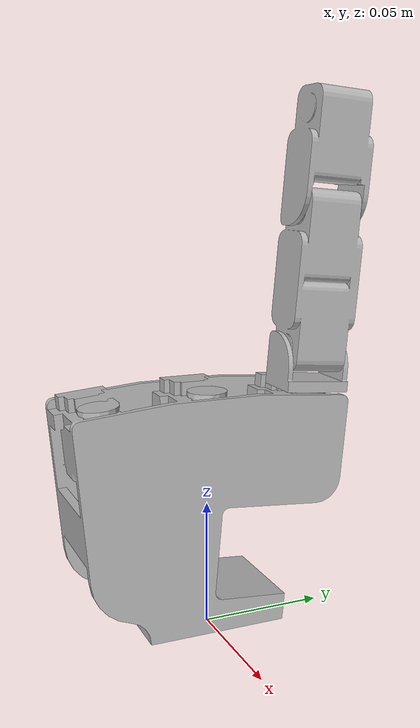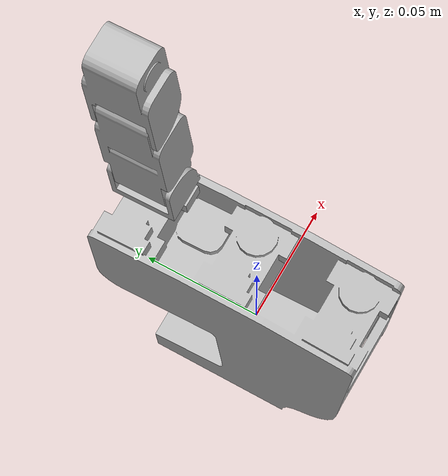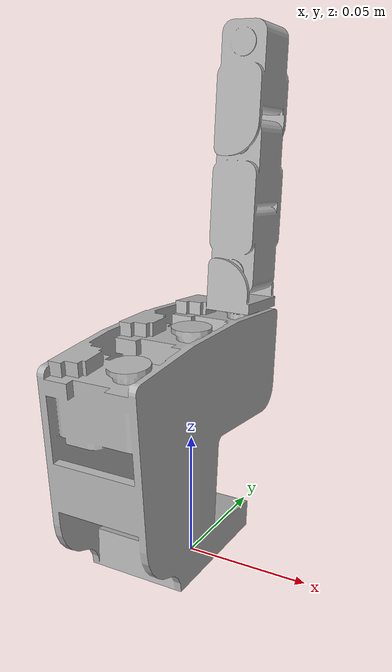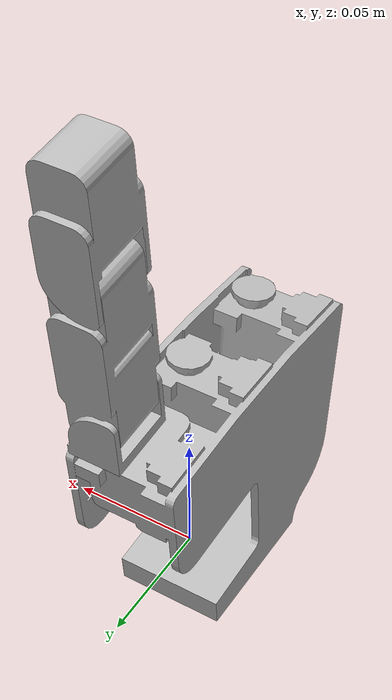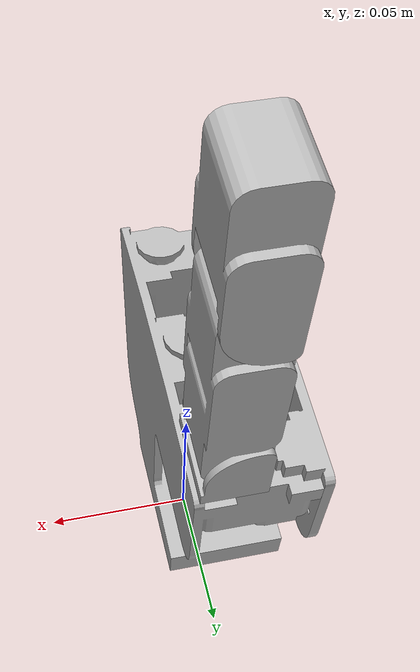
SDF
<?xml version='1.0'?>
<sdf version='1.6'>
  <model name='allegro_finger_1'>
    <joint name='weld_base' type='fixed'>
      <parent>world</parent>
      <child>hand_root</child>
      <pose>0 0 0 0 0 0</pose>
    </joint>

    <link name='hand_root'>
      <pose frame=''>0 0 0 0 -0 0</pose>
      <inertial>
        <pose frame=''>0 0 0.1425 0 -0 0</pose>
        <mass>0.4154</mass>
        <inertia>
          <ixx>0.0001</ixx>
          <ixy>0</ixy>
          <ixz>0</ixz>
          <iyy>0.0001</iyy>
          <iyz>0</iyz>
          <izz>0.0001</izz>
        </inertia>
      </inertial>
      <collision name='hand_root_fixed_joint_lump__palm_link_collision'>
        <pose frame=''>-0.0093 0 0.0475 0 -0 0</pose>
        <geometry>
          <box>
            <size>0.0408 0.113 0.095</size>
          </box>
        </geometry>
      </collision>
      <visual name='hand_root_fixed_joint_lump__palm_link_visual'>
        <pose frame=''>0 0 0.095 0 -0 0</pose>
        <geometry>
          <mesh>
            <scale>1 1 1</scale>
            <uri>../meshes/base_link.obj</uri>
          </mesh>
        </geometry>
      </visual>
    </link>
    <link name='link_0'>
      <pose frame=''>0 0.0435 0.093458 -0.087267 0 0</pose>
      <inertial>
        <pose frame=''>0 0 0 0 -0 0</pose>
        <mass>0.0119</mass>
        <inertia>
          <ixx>1.01667e-06</ixx>
          <ixy>0</ixy>
          <ixz>0</ixz>
          <iyy>6.47677e-07</iyy>
          <iyz>0</iyz>
          <izz>1.01667e-06</izz>
        </inertia>
      </inertial>
      <visual name='link_0_visual'>
        <pose frame=''>0 0 0 0 -0 0</pose>
        <geometry>
          <mesh>
            <scale>1 1 1</scale>
            <uri>../meshes/link_0.0.obj</uri>
          </mesh>
        </geometry>
      </visual>
    </link>
    <joint name='joint_0' type='revolute'>
      <child>link_0</child>
      <parent>hand_root</parent>
      <axis>
        <xyz>0 0.087156 0.996195</xyz>
        <limit>
          <lower>-0.47</lower>
          <upper>0.47</upper>
          <effort>15</effort>
          <velocity>7</velocity>
        </limit>
        <dynamics>
          <damping>3</damping>
          <friction>10</friction>
          <spring_reference>0</spring_reference>
          <spring_stiffness>0</spring_stiffness>
        </dynamics>
        <use_parent_model_frame>1</use_parent_model_frame>
      </axis>
    </joint>
    <link name='link_1'>
      <pose frame=''>0 0.044929 0.109796 -0.087267 0 0</pose>
      <inertial>
        <pose frame=''>0 0 0 0 -0 0</pose>
        <mass>0.065</mass>
        <inertia>
          <ixx>7.95654e-05</ixx>
          <ixy>1.7199e-050</ixy>
          <ixz>8.75875e-060</ixz>
          <iyy>2.47089e-05</iyy>
          <iyz>2.41313e-050</iyz>
          <izz>7.95654e-05</izz>
        </inertia>
      </inertial>
      <collision name='link_1_collision'>
        <pose frame=''>0 0 0.027 0 -0 0</pose>
        <geometry>
          <box>
            <size>0.0196 0.0275 0.054</size>
          </box>
        </geometry>
      </collision>

      <visual name='link_1_visual'>
        <pose frame=''>0 0 0 0 -0 0</pose>
        <geometry>
          <mesh>
            <scale>1 1 1</scale>
            <uri>../meshes/link_1.0.obj</uri>
          </mesh>
        </geometry>
      </visual>
    </link>
    <joint name='joint_1' type='revolute'>
      <child>link_1</child>
      <parent>link_0</parent>
      <axis>
        <xyz>0 0.996195 -0.087156</xyz>
        <limit>
          <lower>-0.196</lower>
          <upper>1.61</upper>
          <effort>15</effort>
          <velocity>7</velocity>
        </limit>
        <dynamics>
          <damping>3</damping>
          <friction>5</friction>
          <spring_reference>0</spring_reference>
          <spring_stiffness>0</spring_stiffness>
        </dynamics>
        <use_parent_model_frame>1</use_parent_model_frame>
      </axis>
    </joint>
    <link name='link_2'>
      <pose frame=''>0 0.049636 0.16359 -0.087267 0 0</pose>
      <inertial>
        <pose frame=''>0 0 0 0 -0 0</pose>
        <mass>0.0355</mass>
        <inertia>
          <ixx>2.63979e-05</ixx>
          <ixy>6.67968e-060</ixy>
          <ixz>4.78363e-060</ixz>
          <iyy>1.34949e-05</iyy>
          <iyz>9.372e-06.</iyz>
          <izz>2.63979e-05</izz>
        </inertia>
      </inertial>
      <collision name='link_2_collision'>
        <pose frame=''>0 0 0.0192 0 -0 0</pose>
        <geometry>
          <box>
            <size>0.0196 0.0275 0.0384</size>
          </box>
        </geometry>
      </collision>
      <visual name='link_2_visual'>
        <pose frame=''>0 0 0 0 -0 0</pose>
        <geometry>
          <mesh>
            <scale>1 1 1</scale>
            <uri>../meshes/link_2.0.obj</uri>
          </mesh>
        </geometry>
      </visual>
    </link>
    <joint name='joint_2' type='revolute'>
      <child>link_2</child>
      <parent>link_1</parent>
      <axis>
        <xyz>0 0.996195 -0.087156</xyz>
        <limit>
          <lower>-0.174</lower>
          <upper>1.709</upper>
          <effort>15</effort>
          <velocity>7</velocity>
        </limit>
        <dynamics>
          <damping>8</damping>
          <friction>10</friction>
          <spring_reference>0</spring_reference>
          <spring_stiffness>0</spring_stiffness>
        </dynamics>
        <use_parent_model_frame>1</use_parent_model_frame>
      </axis>
    </joint>

  </model>
</sdf>
